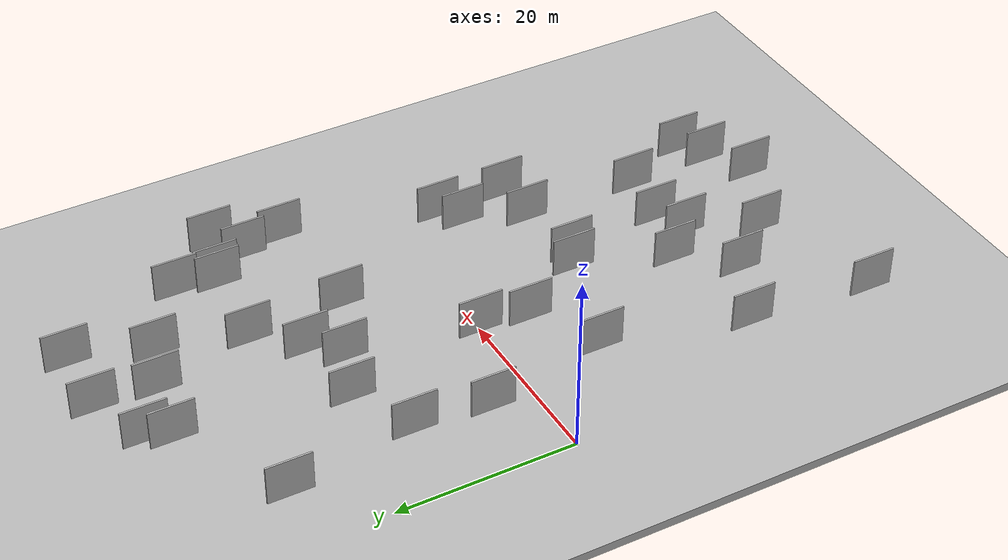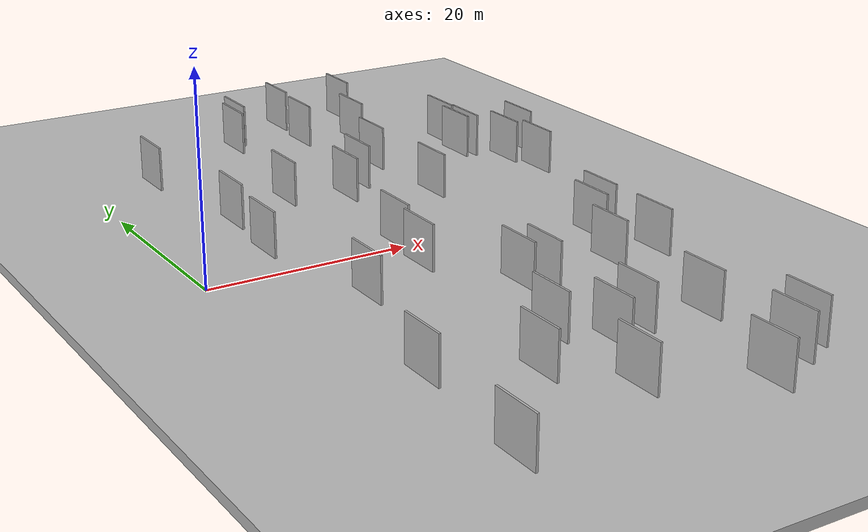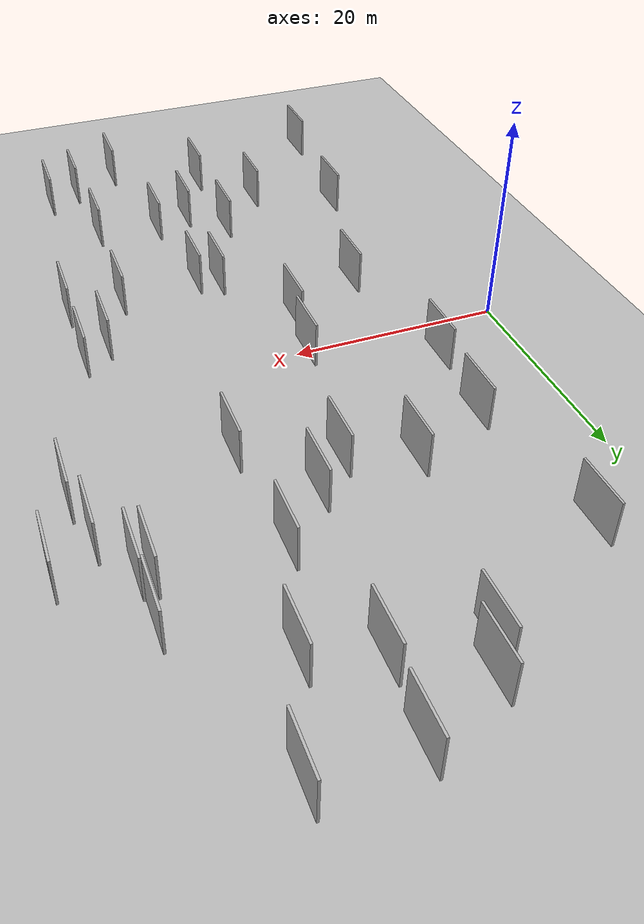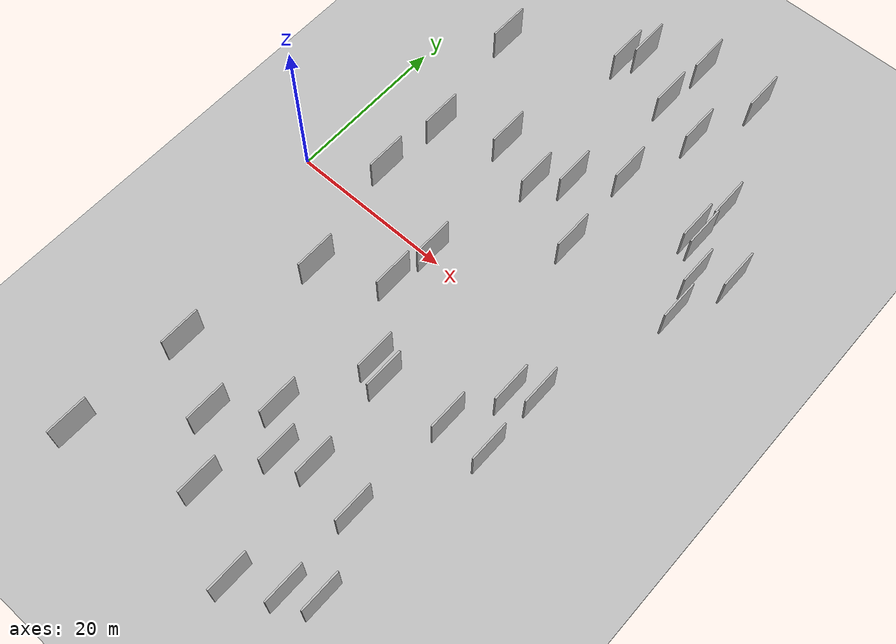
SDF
<?xml version="1.0" encoding="utf-8"?>

<sdf version="1.6">

   <world name="default">

      <gui fullscreen="0">

         <camera name="user_camera">

            <pose>-15 0 4.57585 0 0 0</pose>

            <view_controller>orbit</view_controller>

         </camera>

      </gui>

      <scene>

         <sky>

           <clouds>

             <speed>12</speed>

           </clouds>

         </sky>

         <ambient>0.4 0.4 0.4 1</ambient>

         <background>0.7 0.7 0.7 1</background>

         <shadows>1</shadows>

      </scene>

      <gravity>0 0 -9.8066</gravity>

      <magnetic_field>6e-06 2.3e-05 -4.2e-05</magnetic_field>

      <physics default="0" name="default_physics" type="ode">

         <ode>

            <solver>

               <type>quick</type>

               <iters>10</iters>

               <sor>1.0</sor>

               <use_dynamic_moi_rescaling>0</use_dynamic_moi_rescaling>

            </solver>

            <constraints>

               <cfm>0</cfm>

               <erp>0.2</erp>

               <contact_max_correcting_vel>100</contact_max_correcting_vel>

               <contact_surface_layer>0.001</contact_surface_layer>

            </constraints>

         </ode>

         <max_step_size>0.004</max_step_size>

         <real_time_factor>1</real_time_factor>

         <real_time_update_rate>250</real_time_update_rate>

      </physics>

      <light name="sun" type="directional">

         <cast_shadows>1</cast_shadows>

         <pose>0 0 10 0 0 0</pose>

         <diffuse>0.8 0.8 0.8 1</diffuse>

         <specular>0.2 0.2 0.2 1</specular>

         <attenuation>

            <range>1000</range>

            <constant>0.9</constant>

            <linear>0.01</linear>

            <quadratic>0.001</quadratic>

         </attenuation>

         <direction>-0.5 0.1 -0.9</direction>

      </light>

      <include>

         <name>ground_plane_1</name>

         <uri>model://HANNAS_ground_plane</uri>

         <pose>0 0 0  0 0 0</pose>

      </include>

      <include>

         <name>ground_plane_2</name>

         <uri>model://HANNAS_ground_plane</uri>

         <pose>100 0 0  0 0 0</pose>

      </include>

      <model name="HANNAS_wall_1">

         <static>1</static>

         <pose frame="">39.8599 25.4181 0.0 0.000000 0.000000 1.570796</pose>

         <link name="link">

            <pose frame="">0 0 2.50 0 0 0</pose>

            <collision name="collision">

               <geometry>

                  <box>

                     <size>5.00 0.2 5.00</size>

                  </box>

               </geometry>

               <max_contacts>10</max_contacts>

               <surface>

                  <contact>

                     <ode/>

                  </contact>

                  <bounce/>

                  <friction>

                     <torsional>

                        <ode/>

                     </torsional>

                     <ode/>

                  </friction>

               </surface>

            </collision>

            <visual name="visual">

               <cast_shadows>0</cast_shadows>

               <geometry>

                  <box>

                     <size>5.00 0.2 5.00</size>

                  </box>

               </geometry>

               <material>

                  <script>

                     <uri>model://HANNAS_wall/materials/scripts</uri>

                     <uri>model://HANNAS_wall/materials/textures</uri>

                     <name>vrc/HANNAS_wall</name>

                  </script>

               </material>

            </visual>

            <self_collide>0</self_collide>

            <enable_wind>0</enable_wind>

            <kinematic>0</kinematic>

         </link>

      </model>

      <model name="HANNAS_wall_2">

         <static>1</static>

         <pose frame="">38.7077 -5.1640 0.0 0.000000 0.000000 1.570796</pose>

         <link name="link">

            <pose frame="">0 0 2.50 0 0 0</pose>

            <collision name="collision">

               <geometry>

                  <box>

                     <size>5.00 0.2 5.00</size>

                  </box>

               </geometry>

               <max_contacts>10</max_contacts>

               <surface>

                  <contact>

                     <ode/>

                  </contact>

                  <bounce/>

                  <friction>

                     <torsional>

                        <ode/>

                     </torsional>

                     <ode/>

                  </friction>

               </surface>

            </collision>

            <visual name="visual">

               <cast_shadows>0</cast_shadows>

               <geometry>

                  <box>

                     <size>5.00 0.2 5.00</size>

                  </box>

               </geometry>

               <material>

                  <script>

                     <uri>model://HANNAS_wall/materials/scripts</uri>

                     <uri>model://HANNAS_wall/materials/textures</uri>

                     <name>vrc/HANNAS_wall</name>

                  </script>

               </material>

            </visual>

            <self_collide>0</self_collide>

            <enable_wind>0</enable_wind>

            <kinematic>0</kinematic>

         </link>

      </model>

      <model name="HANNAS_wall_3">

         <static>1</static>

         <pose frame="">26.2451 33.0878 0.0 0.000000 0.000000 1.570796</pose>

         <link name="link">

            <pose frame="">0 0 2.50 0 0 0</pose>

            <collision name="collision">

               <geometry>

                  <box>

                     <size>5.00 0.2 5.00</size>

                  </box>

               </geometry>

               <max_contacts>10</max_contacts>

               <surface>

                  <contact>

                     <ode/>

                  </contact>

                  <bounce/>

                  <friction>

                     <torsional>

                        <ode/>

                     </torsional>

                     <ode/>

                  </friction>

               </surface>

            </collision>

            <visual name="visual">

               <cast_shadows>0</cast_shadows>

               <geometry>

                  <box>

                     <size>5.00 0.2 5.00</size>

                  </box>

               </geometry>

               <material>

                  <script>

                     <uri>model://HANNAS_wall/materials/scripts</uri>

                     <uri>model://HANNAS_wall/materials/textures</uri>

                     <name>vrc/HANNAS_wall</name>

                  </script>

               </material>

            </visual>

            <self_collide>0</self_collide>

            <enable_wind>0</enable_wind>

            <kinematic>0</kinematic>

         </link>

      </model>

      <model name="HANNAS_wall_4">

         <static>1</static>

         <pose frame="">28.7021 -39.4503 0.0 0.000000 0.000000 1.570796</pose>

         <link name="link">

            <pose frame="">0 0 2.50 0 0 0</pose>

            <collision name="collision">

               <geometry>

                  <box>

                     <size>5.00 0.2 5.00</size>

                  </box>

               </geometry>

               <max_contacts>10</max_contacts>

               <surface>

                  <contact>

                     <ode/>

                  </contact>

                  <bounce/>

                  <friction>

                     <torsional>

                        <ode/>

                     </torsional>

                     <ode/>

                  </friction>

               </surface>

            </collision>

            <visual name="visual">

               <cast_shadows>0</cast_shadows>

               <geometry>

                  <box>

                     <size>5.00 0.2 5.00</size>

                  </box>

               </geometry>

               <material>

                  <script>

                     <uri>model://HANNAS_wall/materials/scripts</uri>

                     <uri>model://HANNAS_wall/materials/textures</uri>

                     <name>vrc/HANNAS_wall</name>

                  </script>

               </material>

            </visual>

            <self_collide>0</self_collide>

            <enable_wind>0</enable_wind>

            <kinematic>0</kinematic>

         </link>

      </model>

      <model name="HANNAS_wall_5">

         <static>1</static>

         <pose frame="">14.7106 -29.0027 0.0 0.000000 0.000000 1.570796</pose>

         <link name="link">

            <pose frame="">0 0 2.50 0 0 0</pose>

            <collision name="collision">

               <geometry>

                  <box>

                     <size>5.00 0.2 5.00</size>

                  </box>

               </geometry>

               <max_contacts>10</max_contacts>

               <surface>

                  <contact>

                     <ode/>

                  </contact>

                  <bounce/>

                  <friction>

                     <torsional>

                        <ode/>

                     </torsional>

                     <ode/>

                  </friction>

               </surface>

            </collision>

            <visual name="visual">

               <cast_shadows>0</cast_shadows>

               <geometry>

                  <box>

                     <size>5.00 0.2 5.00</size>

                  </box>

               </geometry>

               <material>

                  <script>

                     <uri>model://HANNAS_wall/materials/scripts</uri>

                     <uri>model://HANNAS_wall/materials/textures</uri>

                     <name>vrc/HANNAS_wall</name>

                  </script>

               </material>

            </visual>

            <self_collide>0</self_collide>

            <enable_wind>0</enable_wind>

            <kinematic>0</kinematic>

         </link>

      </model>

      <model name="HANNAS_wall_6">

         <static>1</static>

         <pose frame="">33.4741 -36.6794 0.0 0.000000 0.000000 1.570796</pose>

         <link name="link">

            <pose frame="">0 0 2.50 0 0 0</pose>

            <collision name="collision">

               <geometry>

                  <box>

                     <size>5.00 0.2 5.00</size>

                  </box>

               </geometry>

               <max_contacts>10</max_contacts>

               <surface>

                  <contact>

                     <ode/>

                  </contact>

                  <bounce/>

                  <friction>

                     <torsional>

                        <ode/>

                     </torsional>

                     <ode/>

                  </friction>

               </surface>

            </collision>

            <visual name="visual">

               <cast_shadows>0</cast_shadows>

               <geometry>

                  <box>

                     <size>5.00 0.2 5.00</size>

                  </box>

               </geometry>

               <material>

                  <script>

                     <uri>model://HANNAS_wall/materials/scripts</uri>

                     <uri>model://HANNAS_wall/materials/textures</uri>

                     <name>vrc/HANNAS_wall</name>

                  </script>

               </material>

            </visual>

            <self_collide>0</self_collide>

            <enable_wind>0</enable_wind>

            <kinematic>0</kinematic>

         </link>

      </model>

      <model name="HANNAS_wall_7">

         <static>1</static>

         <pose frame="">21.7800 14.4285 0.0 0.000000 0.000000 1.570796</pose>

         <link name="link">

            <pose frame="">0 0 2.50 0 0 0</pose>

            <collision name="collision">

               <geometry>

                  <box>

                     <size>5.00 0.2 5.00</size>

                  </box>

               </geometry>

               <max_contacts>10</max_contacts>

               <surface>

                  <contact>

                     <ode/>

                  </contact>

                  <bounce/>

                  <friction>

                     <torsional>

                        <ode/>

                     </torsional>

                     <ode/>

                  </friction>

               </surface>

            </collision>

            <visual name="visual">

               <cast_shadows>0</cast_shadows>

               <geometry>

                  <box>

                     <size>5.00 0.2 5.00</size>

                  </box>

               </geometry>

               <material>

                  <script>

                     <uri>model://HANNAS_wall/materials/scripts</uri>

                     <uri>model://HANNAS_wall/materials/textures</uri>

                     <name>vrc/HANNAS_wall</name>

                  </script>

               </material>

            </visual>

            <self_collide>0</self_collide>

            <enable_wind>0</enable_wind>

            <kinematic>0</kinematic>

         </link>

      </model>

      <model name="HANNAS_wall_8">

         <static>1</static>

         <pose frame="">26.7249 -25.7648 0.0 0.000000 0.000000 1.570796</pose>

         <link name="link">

            <pose frame="">0 0 2.50 0 0 0</pose>

            <collision name="collision">

               <geometry>

                  <box>

                     <size>5.00 0.2 5.00</size>

                  </box>

               </geometry>

               <max_contacts>10</max_contacts>

               <surface>

                  <contact>

                     <ode/>

                  </contact>

                  <bounce/>

                  <friction>

                     <torsional>

                        <ode/>

                     </torsional>

                     <ode/>

                  </friction>

               </surface>

            </collision>

            <visual name="visual">

               <cast_shadows>0</cast_shadows>

               <geometry>

                  <box>

                     <size>5.00 0.2 5.00</size>

                  </box>

               </geometry>

               <material>

                  <script>

                     <uri>model://HANNAS_wall/materials/scripts</uri>

                     <uri>model://HANNAS_wall/materials/textures</uri>

                     <name>vrc/HANNAS_wall</name>

                  </script>

               </material>

            </visual>

            <self_collide>0</self_collide>

            <enable_wind>0</enable_wind>

            <kinematic>0</kinematic>

         </link>

      </model>

      <model name="HANNAS_wall_9">

         <static>1</static>

         <pose frame="">6.6784 -25.0582 0.0 0.000000 0.000000 1.570796</pose>

         <link name="link">

            <pose frame="">0 0 2.50 0 0 0</pose>

            <collision name="collision">

               <geometry>

                  <box>

                     <size>5.00 0.2 5.00</size>

                  </box>

               </geometry>

               <max_contacts>10</max_contacts>

               <surface>

                  <contact>

                     <ode/>

                  </contact>

                  <bounce/>

                  <friction>

                     <torsional>

                        <ode/>

                     </torsional>

                     <ode/>

                  </friction>

               </surface>

            </collision>

            <visual name="visual">

               <cast_shadows>0</cast_shadows>

               <geometry>

                  <box>

                     <size>5.00 0.2 5.00</size>

                  </box>

               </geometry>

               <material>

                  <script>

                     <uri>model://HANNAS_wall/materials/scripts</uri>

                     <uri>model://HANNAS_wall/materials/textures</uri>

                     <name>vrc/HANNAS_wall</name>

                  </script>

               </material>

            </visual>

            <self_collide>0</self_collide>

            <enable_wind>0</enable_wind>

            <kinematic>0</kinematic>

         </link>

      </model>

      <model name="HANNAS_wall_10">

         <static>1</static>

         <pose frame="">18.8569 34.4872 0.0 0.000000 0.000000 1.570796</pose>

         <link name="link">

            <pose frame="">0 0 2.50 0 0 0</pose>

            <collision name="collision">

               <geometry>

                  <box>

                     <size>5.00 0.2 5.00</size>

                  </box>

               </geometry>

               <max_contacts>10</max_contacts>

               <surface>

                  <contact>

                     <ode/>

                  </contact>

                  <bounce/>

                  <friction>

                     <torsional>

                        <ode/>

                     </torsional>

                     <ode/>

                  </friction>

               </surface>

            </collision>

            <visual name="visual">

               <cast_shadows>0</cast_shadows>

               <geometry>

                  <box>

                     <size>5.00 0.2 5.00</size>

                  </box>

               </geometry>

               <material>

                  <script>

                     <uri>model://HANNAS_wall/materials/scripts</uri>

                     <uri>model://HANNAS_wall/materials/textures</uri>

                     <name>vrc/HANNAS_wall</name>

                  </script>

               </material>

            </visual>

            <self_collide>0</self_collide>

            <enable_wind>0</enable_wind>

            <kinematic>0</kinematic>

         </link>

      </model>

      <model name="HANNAS_wall_11">

         <static>1</static>

         <pose frame="">32.9555 -26.6926 0.0 0.000000 0.000000 1.570796</pose>

         <link name="link">

            <pose frame="">0 0 2.50 0 0 0</pose>

            <collision name="collision">

               <geometry>

                  <box>

                     <size>5.00 0.2 5.00</size>

                  </box>

               </geometry>

               <max_contacts>10</max_contacts>

               <surface>

                  <contact>

                     <ode/>

                  </contact>

                  <bounce/>

                  <friction>

                     <torsional>

                        <ode/>

                     </torsional>

                     <ode/>

                  </friction>

               </surface>

            </collision>

            <visual name="visual">

               <cast_shadows>0</cast_shadows>

               <geometry>

                  <box>

                     <size>5.00 0.2 5.00</size>

                  </box>

               </geometry>

               <material>

                  <script>

                     <uri>model://HANNAS_wall/materials/scripts</uri>

                     <uri>model://HANNAS_wall/materials/textures</uri>

                     <name>vrc/HANNAS_wall</name>

                  </script>

               </material>

            </visual>

            <self_collide>0</self_collide>

            <enable_wind>0</enable_wind>

            <kinematic>0</kinematic>

         </link>

      </model>

      <model name="HANNAS_wall_12">

         <static>1</static>

         <pose frame="">36.2605 -6.9438 0.0 0.000000 0.000000 1.570796</pose>

         <link name="link">

            <pose frame="">0 0 2.50 0 0 0</pose>

            <collision name="collision">

               <geometry>

                  <box>

                     <size>5.00 0.2 5.00</size>

                  </box>

               </geometry>

               <max_contacts>10</max_contacts>

               <surface>

                  <contact>

                     <ode/>

                  </contact>

                  <bounce/>

                  <friction>

                     <torsional>

                        <ode/>

                     </torsional>

                     <ode/>

                  </friction>

               </surface>

            </collision>

            <visual name="visual">

               <cast_shadows>0</cast_shadows>

               <geometry>

                  <box>

                     <size>5.00 0.2 5.00</size>

                  </box>

               </geometry>

               <material>

                  <script>

                     <uri>model://HANNAS_wall/materials/scripts</uri>

                     <uri>model://HANNAS_wall/materials/textures</uri>

                     <name>vrc/HANNAS_wall</name>

                  </script>

               </material>

            </visual>

            <self_collide>0</self_collide>

            <enable_wind>0</enable_wind>

            <kinematic>0</kinematic>

         </link>

      </model>

      <model name="HANNAS_wall_13">

         <static>1</static>

         <pose frame="">33.4704 -13.4290 0.0 0.000000 0.000000 1.570796</pose>

         <link name="link">

            <pose frame="">0 0 2.50 0 0 0</pose>

            <collision name="collision">

               <geometry>

                  <box>

                     <size>5.00 0.2 5.00</size>

                  </box>

               </geometry>

               <max_contacts>10</max_contacts>

               <surface>

                  <contact>

                     <ode/>

                  </contact>

                  <bounce/>

                  <friction>

                     <torsional>

                        <ode/>

                     </torsional>

                     <ode/>

                  </friction>

               </surface>

            </collision>

            <visual name="visual">

               <cast_shadows>0</cast_shadows>

               <geometry>

                  <box>

                     <size>5.00 0.2 5.00</size>

                  </box>

               </geometry>

               <material>

                  <script>

                     <uri>model://HANNAS_wall/materials/scripts</uri>

                     <uri>model://HANNAS_wall/materials/textures</uri>

                     <name>vrc/HANNAS_wall</name>

                  </script>

               </material>

            </visual>

            <self_collide>0</self_collide>

            <enable_wind>0</enable_wind>

            <kinematic>0</kinematic>

         </link>

      </model>

      <model name="HANNAS_wall_14">

         <static>1</static>

         <pose frame="">26.6955 39.7175 0.0 0.000000 0.000000 1.570796</pose>

         <link name="link">

            <pose frame="">0 0 2.50 0 0 0</pose>

            <collision name="collision">

               <geometry>

                  <box>

                     <size>5.00 0.2 5.00</size>

                  </box>

               </geometry>

               <max_contacts>10</max_contacts>

               <surface>

                  <contact>

                     <ode/>

                  </contact>

                  <bounce/>

                  <friction>

                     <torsional>

                        <ode/>

                     </torsional>

                     <ode/>

                  </friction>

               </surface>

            </collision>

            <visual name="visual">

               <cast_shadows>0</cast_shadows>

               <geometry>

                  <box>

                     <size>5.00 0.2 5.00</size>

                  </box>

               </geometry>

               <material>

                  <script>

                     <uri>model://HANNAS_wall/materials/scripts</uri>

                     <uri>model://HANNAS_wall/materials/textures</uri>

                     <name>vrc/HANNAS_wall</name>

                  </script>

               </material>

            </visual>

            <self_collide>0</self_collide>

            <enable_wind>0</enable_wind>

            <kinematic>0</kinematic>

         </link>

      </model>

      <model name="HANNAS_wall_15">

         <static>1</static>

         <pose frame="">31.6888 31.1160 0.0 0.000000 0.000000 1.570796</pose>

         <link name="link">

            <pose frame="">0 0 2.50 0 0 0</pose>

            <collision name="collision">

               <geometry>

                  <box>

                     <size>5.00 0.2 5.00</size>

                  </box>

               </geometry>

               <max_contacts>10</max_contacts>

               <surface>

                  <contact>

                     <ode/>

                  </contact>

                  <bounce/>

                  <friction>

                     <torsional>

                        <ode/>

                     </torsional>

                     <ode/>

                  </friction>

               </surface>

            </collision>

            <visual name="visual">

               <cast_shadows>0</cast_shadows>

               <geometry>

                  <box>

                     <size>5.00 0.2 5.00</size>

                  </box>

               </geometry>

               <material>

                  <script>

                     <uri>model://HANNAS_wall/materials/scripts</uri>

                     <uri>model://HANNAS_wall/materials/textures</uri>

                     <name>vrc/HANNAS_wall</name>

                  </script>

               </material>

            </visual>

            <self_collide>0</self_collide>

            <enable_wind>0</enable_wind>

            <kinematic>0</kinematic>

         </link>

      </model>

      <model name="HANNAS_wall_16">

         <static>1</static>

         <pose frame="">18.4051 -5.2788 0.0 0.000000 0.000000 1.570796</pose>

         <link name="link">

            <pose frame="">0 0 2.50 0 0 0</pose>

            <collision name="collision">

               <geometry>

                  <box>

                     <size>5.00 0.2 5.00</size>

                  </box>

               </geometry>

               <max_contacts>10</max_contacts>

               <surface>

                  <contact>

                     <ode/>

                  </contact>

                  <bounce/>

                  <friction>

                     <torsional>

                        <ode/>

                     </torsional>

                     <ode/>

                  </friction>

               </surface>

            </collision>

            <visual name="visual">

               <cast_shadows>0</cast_shadows>

               <geometry>

                  <box>

                     <size>5.00 0.2 5.00</size>

                  </box>

               </geometry>

               <material>

                  <script>

                     <uri>model://HANNAS_wall/materials/scripts</uri>

                     <uri>model://HANNAS_wall/materials/textures</uri>

                     <name>vrc/HANNAS_wall</name>

                  </script>

               </material>

            </visual>

            <self_collide>0</self_collide>

            <enable_wind>0</enable_wind>

            <kinematic>0</kinematic>

         </link>

      </model>

      <model name="HANNAS_wall_17">

         <static>1</static>

         <pose frame="">34.5211 39.5623 0.0 0.000000 0.000000 1.570796</pose>

         <link name="link">

            <pose frame="">0 0 2.50 0 0 0</pose>

            <collision name="collision">

               <geometry>

                  <box>

                     <size>5.00 0.2 5.00</size>

                  </box>

               </geometry>

               <max_contacts>10</max_contacts>

               <surface>

                  <contact>

                     <ode/>

                  </contact>

                  <bounce/>

                  <friction>

                     <torsional>

                        <ode/>

                     </torsional>

                     <ode/>

                  </friction>

               </surface>

            </collision>

            <visual name="visual">

               <cast_shadows>0</cast_shadows>

               <geometry>

                  <box>

                     <size>5.00 0.2 5.00</size>

                  </box>

               </geometry>

               <material>

                  <script>

                     <uri>model://HANNAS_wall/materials/scripts</uri>

                     <uri>model://HANNAS_wall/materials/textures</uri>

                     <name>vrc/HANNAS_wall</name>

                  </script>

               </material>

            </visual>

            <self_collide>0</self_collide>

            <enable_wind>0</enable_wind>

            <kinematic>0</kinematic>

         </link>

      </model>

      <model name="HANNAS_wall_18">

         <static>1</static>

         <pose frame="">23.4957 -13.4753 0.0 0.000000 0.000000 1.570796</pose>

         <link name="link">

            <pose frame="">0 0 2.50 0 0 0</pose>

            <collision name="collision">

               <geometry>

                  <box>

                     <size>5.00 0.2 5.00</size>

                  </box>

               </geometry>

               <max_contacts>10</max_contacts>

               <surface>

                  <contact>

                     <ode/>

                  </contact>

                  <bounce/>

                  <friction>

                     <torsional>

                        <ode/>

                     </torsional>

                     <ode/>

                  </friction>

               </surface>

            </collision>

            <visual name="visual">

               <cast_shadows>0</cast_shadows>

               <geometry>

                  <box>

                     <size>5.00 0.2 5.00</size>

                  </box>

               </geometry>

               <material>

                  <script>

                     <uri>model://HANNAS_wall/materials/scripts</uri>

                     <uri>model://HANNAS_wall/materials/textures</uri>

                     <name>vrc/HANNAS_wall</name>

                  </script>

               </material>

            </visual>

            <self_collide>0</self_collide>

            <enable_wind>0</enable_wind>

            <kinematic>0</kinematic>

         </link>

      </model>

      <model name="HANNAS_wall_19">

         <static>1</static>

         <pose frame="">29.0298 21.8526 0.0 0.000000 0.000000 1.570796</pose>

         <link name="link">

            <pose frame="">0 0 2.50 0 0 0</pose>

            <collision name="collision">

               <geometry>

                  <box>

                     <size>5.00 0.2 5.00</size>

                  </box>

               </geometry>

               <max_contacts>10</max_contacts>

               <surface>

                  <contact>

                     <ode/>

                  </contact>

                  <bounce/>

                  <friction>

                     <torsional>

                        <ode/>

                     </torsional>

                     <ode/>

                  </friction>

               </surface>

            </collision>

            <visual name="visual">

               <cast_shadows>0</cast_shadows>

               <geometry>

                  <box>

                     <size>5.00 0.2 5.00</size>

                  </box>

               </geometry>

               <material>

                  <script>

                     <uri>model://HANNAS_wall/materials/scripts</uri>

                     <uri>model://HANNAS_wall/materials/textures</uri>

                     <name>vrc/HANNAS_wall</name>

                  </script>

               </material>

            </visual>

            <self_collide>0</self_collide>

            <enable_wind>0</enable_wind>

            <kinematic>0</kinematic>

         </link>

      </model>

      <model name="HANNAS_wall_20">

         <static>1</static>

         <pose frame="">19.5828 -23.6909 0.0 0.000000 0.000000 1.570796</pose>

         <link name="link">

            <pose frame="">0 0 2.50 0 0 0</pose>

            <collision name="collision">

               <geometry>

                  <box>

                     <size>5.00 0.2 5.00</size>

                  </box>

               </geometry>

               <max_contacts>10</max_contacts>

               <surface>

                  <contact>

                     <ode/>

                  </contact>

                  <bounce/>

                  <friction>

                     <torsional>

                        <ode/>

                     </torsional>

                     <ode/>

                  </friction>

               </surface>

            </collision>

            <visual name="visual">

               <cast_shadows>0</cast_shadows>

               <geometry>

                  <box>

                     <size>5.00 0.2 5.00</size>

                  </box>

               </geometry>

               <material>

                  <script>

                     <uri>model://HANNAS_wall/materials/scripts</uri>

                     <uri>model://HANNAS_wall/materials/textures</uri>

                     <name>vrc/HANNAS_wall</name>

                  </script>

               </material>

            </visual>

            <self_collide>0</self_collide>

            <enable_wind>0</enable_wind>

            <kinematic>0</kinematic>

         </link>

      </model>

      <model name="HANNAS_wall_21">

         <static>1</static>

         <pose frame="">19.6270 -34.7975 0.0 0.000000 0.000000 1.570796</pose>

         <link name="link">

            <pose frame="">0 0 2.50 0 0 0</pose>

            <collision name="collision">

               <geometry>

                  <box>

                     <size>5.00 0.2 5.00</size>

                  </box>

               </geometry>

               <max_contacts>10</max_contacts>

               <surface>

                  <contact>

                     <ode/>

                  </contact>

                  <bounce/>

                  <friction>

                     <torsional>

                        <ode/>

                     </torsional>

                     <ode/>

                  </friction>

               </surface>

            </collision>

            <visual name="visual">

               <cast_shadows>0</cast_shadows>

               <geometry>

                  <box>

                     <size>5.00 0.2 5.00</size>

                  </box>

               </geometry>

               <material>

                  <script>

                     <uri>model://HANNAS_wall/materials/scripts</uri>

                     <uri>model://HANNAS_wall/materials/textures</uri>

                     <name>vrc/HANNAS_wall</name>

                  </script>

               </material>

            </visual>

            <self_collide>0</self_collide>

            <enable_wind>0</enable_wind>

            <kinematic>0</kinematic>

         </link>

      </model>

      <model name="HANNAS_wall_22">

         <static>1</static>

         <pose frame="">24.7822 17.3534 0.0 0.000000 0.000000 1.570796</pose>

         <link name="link">

            <pose frame="">0 0 2.50 0 0 0</pose>

            <collision name="collision">

               <geometry>

                  <box>

                     <size>5.00 0.2 5.00</size>

                  </box>

               </geometry>

               <max_contacts>10</max_contacts>

               <surface>

                  <contact>

                     <ode/>

                  </contact>

                  <bounce/>

                  <friction>

                     <torsional>

                        <ode/>

                     </torsional>

                     <ode/>

                  </friction>

               </surface>

            </collision>

            <visual name="visual">

               <cast_shadows>0</cast_shadows>

               <geometry>

                  <box>

                     <size>5.00 0.2 5.00</size>

                  </box>

               </geometry>

               <material>

                  <script>

                     <uri>model://HANNAS_wall/materials/scripts</uri>

                     <uri>model://HANNAS_wall/materials/textures</uri>

                     <name>vrc/HANNAS_wall</name>

                  </script>

               </material>

            </visual>

            <self_collide>0</self_collide>

            <enable_wind>0</enable_wind>

            <kinematic>0</kinematic>

         </link>

      </model>

      <model name="HANNAS_wall_23">

         <static>1</static>

         <pose frame="">15.9523 16.4807 0.0 0.000000 0.000000 1.570796</pose>

         <link name="link">

            <pose frame="">0 0 2.50 0 0 0</pose>

            <collision name="collision">

               <geometry>

                  <box>

                     <size>5.00 0.2 5.00</size>

                  </box>

               </geometry>

               <max_contacts>10</max_contacts>

               <surface>

                  <contact>

                     <ode/>

                  </contact>

                  <bounce/>

                  <friction>

                     <torsional>

                        <ode/>

                     </torsional>

                     <ode/>

                  </friction>

               </surface>

            </collision>

            <visual name="visual">

               <cast_shadows>0</cast_shadows>

               <geometry>

                  <box>

                     <size>5.00 0.2 5.00</size>

                  </box>

               </geometry>

               <material>

                  <script>

                     <uri>model://HANNAS_wall/materials/scripts</uri>

                     <uri>model://HANNAS_wall/materials/textures</uri>

                     <name>vrc/HANNAS_wall</name>

                  </script>

               </material>

            </visual>

            <self_collide>0</self_collide>

            <enable_wind>0</enable_wind>

            <kinematic>0</kinematic>

         </link>

      </model>

      <model name="HANNAS_wall_24">

         <static>1</static>

         <pose frame="">42.3539 16.4638 0.0 0.000000 0.000000 1.570796</pose>

         <link name="link">

            <pose frame="">0 0 2.50 0 0 0</pose>

            <collision name="collision">

               <geometry>

                  <box>

                     <size>5.00 0.2 5.00</size>

                  </box>

               </geometry>

               <max_contacts>10</max_contacts>

               <surface>

                  <contact>

                     <ode/>

                  </contact>

                  <bounce/>

                  <friction>

                     <torsional>

                        <ode/>

                     </torsional>

                     <ode/>

                  </friction>

               </surface>

            </collision>

            <visual name="visual">

               <cast_shadows>0</cast_shadows>

               <geometry>

                  <box>

                     <size>5.00 0.2 5.00</size>

                  </box>

               </geometry>

               <material>

                  <script>

                     <uri>model://HANNAS_wall/materials/scripts</uri>

                     <uri>model://HANNAS_wall/materials/textures</uri>

                     <name>vrc/HANNAS_wall</name>

                  </script>

               </material>

            </visual>

            <self_collide>0</self_collide>

            <enable_wind>0</enable_wind>

            <kinematic>0</kinematic>

         </link>

      </model>

      <model name="HANNAS_wall_25">

         <static>1</static>

         <pose frame="">8.7243 13.2373 0.0 0.000000 0.000000 1.570796</pose>

         <link name="link">

            <pose frame="">0 0 2.50 0 0 0</pose>

            <collision name="collision">

               <geometry>

                  <box>

                     <size>5.00 0.2 5.00</size>

                  </box>

               </geometry>

               <max_contacts>10</max_contacts>

               <surface>

                  <contact>

                     <ode/>

                  </contact>

                  <bounce/>

                  <friction>

                     <torsional>

                        <ode/>

                     </torsional>

                     <ode/>

                  </friction>

               </surface>

            </collision>

            <visual name="visual">

               <cast_shadows>0</cast_shadows>

               <geometry>

                  <box>

                     <size>5.00 0.2 5.00</size>

                  </box>

               </geometry>

               <material>

                  <script>

                     <uri>model://HANNAS_wall/materials/scripts</uri>

                     <uri>model://HANNAS_wall/materials/textures</uri>

                     <name>vrc/HANNAS_wall</name>

                  </script>

               </material>

            </visual>

            <self_collide>0</self_collide>

            <enable_wind>0</enable_wind>

            <kinematic>0</kinematic>

         </link>

      </model>

      <model name="HANNAS_wall_26">

         <static>1</static>

         <pose frame="">19.1493 0.1953 0.0 0.000000 0.000000 1.570796</pose>

         <link name="link">

            <pose frame="">0 0 2.50 0 0 0</pose>

            <collision name="collision">

               <geometry>

                  <box>

                     <size>5.00 0.2 5.00</size>

                  </box>

               </geometry>

               <max_contacts>10</max_contacts>

               <surface>

                  <contact>

                     <ode/>

                  </contact>

                  <bounce/>

                  <friction>

                     <torsional>

                        <ode/>

                     </torsional>

                     <ode/>

                  </friction>

               </surface>

            </collision>

            <visual name="visual">

               <cast_shadows>0</cast_shadows>

               <geometry>

                  <box>

                     <size>5.00 0.2 5.00</size>

                  </box>

               </geometry>

               <material>

                  <script>

                     <uri>model://HANNAS_wall/materials/scripts</uri>

                     <uri>model://HANNAS_wall/materials/textures</uri>

                     <name>vrc/HANNAS_wall</name>

                  </script>

               </material>

            </visual>

            <self_collide>0</self_collide>

            <enable_wind>0</enable_wind>

            <kinematic>0</kinematic>

         </link>

      </model>

      <model name="HANNAS_wall_27">

         <static>1</static>

         <pose frame="">20.1574 36.8348 0.0 0.000000 0.000000 1.570796</pose>

         <link name="link">

            <pose frame="">0 0 2.50 0 0 0</pose>

            <collision name="collision">

               <geometry>

                  <box>

                     <size>5.00 0.2 5.00</size>

                  </box>

               </geometry>

               <max_contacts>10</max_contacts>

               <surface>

                  <contact>

                     <ode/>

                  </contact>

                  <bounce/>

                  <friction>

                     <torsional>

                        <ode/>

                     </torsional>

                     <ode/>

                  </friction>

               </surface>

            </collision>

            <visual name="visual">

               <cast_shadows>0</cast_shadows>

               <geometry>

                  <box>

                     <size>5.00 0.2 5.00</size>

                  </box>

               </geometry>

               <material>

                  <script>

                     <uri>model://HANNAS_wall/materials/scripts</uri>

                     <uri>model://HANNAS_wall/materials/textures</uri>

                     <name>vrc/HANNAS_wall</name>

                  </script>

               </material>

            </visual>

            <self_collide>0</self_collide>

            <enable_wind>0</enable_wind>

            <kinematic>0</kinematic>

         </link>

      </model>

      <model name="HANNAS_wall_28">

         <static>1</static>

         <pose frame="">7.9740 4.8975 0.0 0.000000 0.000000 1.570796</pose>

         <link name="link">

            <pose frame="">0 0 2.50 0 0 0</pose>

            <collision name="collision">

               <geometry>

                  <box>

                     <size>5.00 0.2 5.00</size>

                  </box>

               </geometry>

               <max_contacts>10</max_contacts>

               <surface>

                  <contact>

                     <ode/>

                  </contact>

                  <bounce/>

                  <friction>

                     <torsional>

                        <ode/>

                     </torsional>

                     <ode/>

                  </friction>

               </surface>

            </collision>

            <visual name="visual">

               <cast_shadows>0</cast_shadows>

               <geometry>

                  <box>

                     <size>5.00 0.2 5.00</size>

                  </box>

               </geometry>

               <material>

                  <script>

                     <uri>model://HANNAS_wall/materials/scripts</uri>

                     <uri>model://HANNAS_wall/materials/textures</uri>

                     <name>vrc/HANNAS_wall</name>

                  </script>

               </material>

            </visual>

            <self_collide>0</self_collide>

            <enable_wind>0</enable_wind>

            <kinematic>0</kinematic>

         </link>

      </model>

      <model name="HANNAS_wall_29">

         <static>1</static>

         <pose frame="">23.0907 -27.2850 0.0 0.000000 0.000000 1.570796</pose>

         <link name="link">

            <pose frame="">0 0 2.50 0 0 0</pose>

            <collision name="collision">

               <geometry>

                  <box>

                     <size>5.00 0.2 5.00</size>

                  </box>

               </geometry>

               <max_contacts>10</max_contacts>

               <surface>

                  <contact>

                     <ode/>

                  </contact>

                  <bounce/>

                  <friction>

                     <torsional>

                        <ode/>

                     </torsional>

                     <ode/>

                  </friction>

               </surface>

            </collision>

            <visual name="visual">

               <cast_shadows>0</cast_shadows>

               <geometry>

                  <box>

                     <size>5.00 0.2 5.00</size>

                  </box>

               </geometry>

               <material>

                  <script>

                     <uri>model://HANNAS_wall/materials/scripts</uri>

                     <uri>model://HANNAS_wall/materials/textures</uri>

                     <name>vrc/HANNAS_wall</name>

                  </script>

               </material>

            </visual>

            <self_collide>0</self_collide>

            <enable_wind>0</enable_wind>

            <kinematic>0</kinematic>

         </link>

      </model>

      <model name="HANNAS_wall_30">

         <static>1</static>

         <pose frame="">25.5835 -14.4208 0.0 0.000000 0.000000 1.570796</pose>

         <link name="link">

            <pose frame="">0 0 2.50 0 0 0</pose>

            <collision name="collision">

               <geometry>

                  <box>

                     <size>5.00 0.2 5.00</size>

                  </box>

               </geometry>

               <max_contacts>10</max_contacts>

               <surface>

                  <contact>

                     <ode/>

                  </contact>

                  <bounce/>

                  <friction>

                     <torsional>

                        <ode/>

                     </torsional>

                     <ode/>

                  </friction>

               </surface>

            </collision>

            <visual name="visual">

               <cast_shadows>0</cast_shadows>

               <geometry>

                  <box>

                     <size>5.00 0.2 5.00</size>

                  </box>

               </geometry>

               <material>

                  <script>

                     <uri>model://HANNAS_wall/materials/scripts</uri>

                     <uri>model://HANNAS_wall/materials/textures</uri>

                     <name>vrc/HANNAS_wall</name>

                  </script>

               </material>

            </visual>

            <self_collide>0</self_collide>

            <enable_wind>0</enable_wind>

            <kinematic>0</kinematic>

         </link>

      </model>

      <model name="HANNAS_wall_31">

         <static>1</static>

         <pose frame="">36.5977 -34.9653 0.0 0.000000 0.000000 1.570796</pose>

         <link name="link">

            <pose frame="">0 0 2.50 0 0 0</pose>

            <collision name="collision">

               <geometry>

                  <box>

                     <size>5.00 0.2 5.00</size>

                  </box>

               </geometry>

               <max_contacts>10</max_contacts>

               <surface>

                  <contact>

                     <ode/>

                  </contact>

                  <bounce/>

                  <friction>

                     <torsional>

                        <ode/>

                     </torsional>

                     <ode/>

                  </friction>

               </surface>

            </collision>

            <visual name="visual">

               <cast_shadows>0</cast_shadows>

               <geometry>

                  <box>

                     <size>5.00 0.2 5.00</size>

                  </box>

               </geometry>

               <material>

                  <script>

                     <uri>model://HANNAS_wall/materials/scripts</uri>

                     <uri>model://HANNAS_wall/materials/textures</uri>

                     <name>vrc/HANNAS_wall</name>

                  </script>

               </material>

            </visual>

            <self_collide>0</self_collide>

            <enable_wind>0</enable_wind>

            <kinematic>0</kinematic>

         </link>

      </model>

      <model name="HANNAS_wall_32">

         <static>1</static>

         <pose frame="">29.7608 10.9643 0.0 0.000000 0.000000 1.570796</pose>

         <link name="link">

            <pose frame="">0 0 2.50 0 0 0</pose>

            <collision name="collision">

               <geometry>

                  <box>

                     <size>5.00 0.2 5.00</size>

                  </box>

               </geometry>

               <max_contacts>10</max_contacts>

               <surface>

                  <contact>

                     <ode/>

                  </contact>

                  <bounce/>

                  <friction>

                     <torsional>

                        <ode/>

                     </torsional>

                     <ode/>

                  </friction>

               </surface>

            </collision>

            <visual name="visual">

               <cast_shadows>0</cast_shadows>

               <geometry>

                  <box>

                     <size>5.00 0.2 5.00</size>

                  </box>

               </geometry>

               <material>

                  <script>

                     <uri>model://HANNAS_wall/materials/scripts</uri>

                     <uri>model://HANNAS_wall/materials/textures</uri>

                     <name>vrc/HANNAS_wall</name>

                  </script>

               </material>

            </visual>

            <self_collide>0</self_collide>

            <enable_wind>0</enable_wind>

            <kinematic>0</kinematic>

         </link>

      </model>

      <model name="HANNAS_wall_33">

         <static>1</static>

         <pose frame="">6.4875 27.7052 0.0 0.000000 0.000000 1.570796</pose>

         <link name="link">

            <pose frame="">0 0 2.50 0 0 0</pose>

            <collision name="collision">

               <geometry>

                  <box>

                     <size>5.00 0.2 5.00</size>

                  </box>

               </geometry>

               <max_contacts>10</max_contacts>

               <surface>

                  <contact>

                     <ode/>

                  </contact>

                  <bounce/>

                  <friction>

                     <torsional>

                        <ode/>

                     </torsional>

                     <ode/>

                  </friction>

               </surface>

            </collision>

            <visual name="visual">

               <cast_shadows>0</cast_shadows>

               <geometry>

                  <box>

                     <size>5.00 0.2 5.00</size>

                  </box>

               </geometry>

               <material>

                  <script>

                     <uri>model://HANNAS_wall/materials/scripts</uri>

                     <uri>model://HANNAS_wall/materials/textures</uri>

                     <name>vrc/HANNAS_wall</name>

                  </script>

               </material>

            </visual>

            <self_collide>0</self_collide>

            <enable_wind>0</enable_wind>

            <kinematic>0</kinematic>

         </link>

      </model>

      <model name="HANNAS_wall_34">

         <static>1</static>

         <pose frame="">40.0632 20.6979 0.0 0.000000 0.000000 1.570796</pose>

         <link name="link">

            <pose frame="">0 0 2.50 0 0 0</pose>

            <collision name="collision">

               <geometry>

                  <box>

                     <size>5.00 0.2 5.00</size>

                  </box>

               </geometry>

               <max_contacts>10</max_contacts>

               <surface>

                  <contact>

                     <ode/>

                  </contact>

                  <bounce/>

                  <friction>

                     <torsional>

                        <ode/>

                     </torsional>

                     <ode/>

                  </friction>

               </surface>

            </collision>

            <visual name="visual">

               <cast_shadows>0</cast_shadows>

               <geometry>

                  <box>

                     <size>5.00 0.2 5.00</size>

                  </box>

               </geometry>

               <material>

                  <script>

                     <uri>model://HANNAS_wall/materials/scripts</uri>

                     <uri>model://HANNAS_wall/materials/textures</uri>

                     <name>vrc/HANNAS_wall</name>

                  </script>

               </material>

            </visual>

            <self_collide>0</self_collide>

            <enable_wind>0</enable_wind>

            <kinematic>0</kinematic>

         </link>

      </model>

      <model name="HANNAS_wall_35">

         <static>1</static>

         <pose frame="">43.3226 11.8094 0.0 0.000000 0.000000 1.570796</pose>

         <link name="link">

            <pose frame="">0 0 2.50 0 0 0</pose>

            <collision name="collision">

               <geometry>

                  <box>

                     <size>5.00 0.2 5.00</size>

                  </box>

               </geometry>

               <max_contacts>10</max_contacts>

               <surface>

                  <contact>

                     <ode/>

                  </contact>

                  <bounce/>

                  <friction>

                     <torsional>

                        <ode/>

                     </torsional>

                     <ode/>

                  </friction>

               </surface>

            </collision>

            <visual name="visual">

               <cast_shadows>0</cast_shadows>

               <geometry>

                  <box>

                     <size>5.00 0.2 5.00</size>

                  </box>

               </geometry>

               <material>

                  <script>

                     <uri>model://HANNAS_wall/materials/scripts</uri>

                     <uri>model://HANNAS_wall/materials/textures</uri>

                     <name>vrc/HANNAS_wall</name>

                  </script>

               </material>

            </visual>

            <self_collide>0</self_collide>

            <enable_wind>0</enable_wind>

            <kinematic>0</kinematic>

         </link>

      </model>

      <model name="HANNAS_wall_36">

         <static>1</static>

         <pose frame="">45.8292 18.8973 0.0 0.000000 0.000000 1.570796</pose>

         <link name="link">

            <pose frame="">0 0 2.50 0 0 0</pose>

            <collision name="collision">

               <geometry>

                  <box>

                     <size>5.00 0.2 5.00</size>

                  </box>

               </geometry>

               <max_contacts>10</max_contacts>

               <surface>

                  <contact>

                     <ode/>

                  </contact>

                  <bounce/>

                  <friction>

                     <torsional>

                        <ode/>

                     </torsional>

                     <ode/>

                  </friction>

               </surface>

            </collision>

            <visual name="visual">

               <cast_shadows>0</cast_shadows>

               <geometry>

                  <box>

                     <size>5.00 0.2 5.00</size>

                  </box>

               </geometry>

               <material>

                  <script>

                     <uri>model://HANNAS_wall/materials/scripts</uri>

                     <uri>model://HANNAS_wall/materials/textures</uri>

                     <name>vrc/HANNAS_wall</name>

                  </script>

               </material>

            </visual>

            <self_collide>0</self_collide>

            <enable_wind>0</enable_wind>

            <kinematic>0</kinematic>

         </link>

      </model>

      <model name="HANNAS_wall_37">

         <static>1</static>

         <pose frame="">5.4716 -39.2524 0.0 0.000000 0.000000 1.570796</pose>

         <link name="link">

            <pose frame="">0 0 2.50 0 0 0</pose>

            <collision name="collision">

               <geometry>

                  <box>

                     <size>5.00 0.2 5.00</size>

                  </box>

               </geometry>

               <max_contacts>10</max_contacts>

               <surface>

                  <contact>

                     <ode/>

                  </contact>

                  <bounce/>

                  <friction>

                     <torsional>

                        <ode/>

                     </torsional>

                     <ode/>

                  </friction>

               </surface>

            </collision>

            <visual name="visual">

               <cast_shadows>0</cast_shadows>

               <geometry>

                  <box>

                     <size>5.00 0.2 5.00</size>

                  </box>

               </geometry>

               <material>

                  <script>

                     <uri>model://HANNAS_wall/materials/scripts</uri>

                     <uri>model://HANNAS_wall/materials/textures</uri>

                     <name>vrc/HANNAS_wall</name>

                  </script>

               </material>

            </visual>

            <self_collide>0</self_collide>

            <enable_wind>0</enable_wind>

            <kinematic>0</kinematic>

         </link>

      </model>

      <model name="HANNAS_wall_38">

         <static>1</static>

         <pose frame="">38.7293 -13.1994 0.0 0.000000 0.000000 1.570796</pose>

         <link name="link">

            <pose frame="">0 0 2.50 0 0 0</pose>

            <collision name="collision">

               <geometry>

                  <box>

                     <size>5.00 0.2 5.00</size>

                  </box>

               </geometry>

               <max_contacts>10</max_contacts>

               <surface>

                  <contact>

                     <ode/>

                  </contact>

                  <bounce/>

                  <friction>

                     <torsional>

                        <ode/>

                     </torsional>

                     <ode/>

                  </friction>

               </surface>

            </collision>

            <visual name="visual">

               <cast_shadows>0</cast_shadows>

               <geometry>

                  <box>

                     <size>5.00 0.2 5.00</size>

                  </box>

               </geometry>

               <material>

                  <script>

                     <uri>model://HANNAS_wall/materials/scripts</uri>

                     <uri>model://HANNAS_wall/materials/textures</uri>

                     <name>vrc/HANNAS_wall</name>

                  </script>

               </material>

            </visual>

            <self_collide>0</self_collide>

            <enable_wind>0</enable_wind>

            <kinematic>0</kinematic>

         </link>

      </model>

      <model name="HANNAS_wall_39">

         <static>1</static>

         <pose frame="">10.8115 -9.2956 0.0 0.000000 0.000000 1.570796</pose>

         <link name="link">

            <pose frame="">0 0 2.50 0 0 0</pose>

            <collision name="collision">

               <geometry>

                  <box>

                     <size>5.00 0.2 5.00</size>

                  </box>

               </geometry>

               <max_contacts>10</max_contacts>

               <surface>

                  <contact>

                     <ode/>

                  </contact>

                  <bounce/>

                  <friction>

                     <torsional>

                        <ode/>

                     </torsional>

                     <ode/>

                  </friction>

               </surface>

            </collision>

            <visual name="visual">

               <cast_shadows>0</cast_shadows>

               <geometry>

                  <box>

                     <size>5.00 0.2 5.00</size>

                  </box>

               </geometry>

               <material>

                  <script>

                     <uri>model://HANNAS_wall/materials/scripts</uri>

                     <uri>model://HANNAS_wall/materials/textures</uri>

                     <name>vrc/HANNAS_wall</name>

                  </script>

               </material>

            </visual>

            <self_collide>0</self_collide>

            <enable_wind>0</enable_wind>

            <kinematic>0</kinematic>

         </link>

      </model>

      <model name="HANNAS_wall_40">

         <static>1</static>

         <pose frame="">38.9955 20.9362 0.0 0.000000 0.000000 1.570796</pose>

         <link name="link">

            <pose frame="">0 0 2.50 0 0 0</pose>

            <collision name="collision">

               <geometry>

                  <box>

                     <size>5.00 0.2 5.00</size>

                  </box>

               </geometry>

               <max_contacts>10</max_contacts>

               <surface>

                  <contact>

                     <ode/>

                  </contact>

                  <bounce/>

                  <friction>

                     <torsional>

                        <ode/>

                     </torsional>

                     <ode/>

                  </friction>

               </surface>

            </collision>

            <visual name="visual">

               <cast_shadows>0</cast_shadows>

               <geometry>

                  <box>

                     <size>5.00 0.2 5.00</size>

                  </box>

               </geometry>

               <material>

                  <script>

                     <uri>model://HANNAS_wall/materials/scripts</uri>

                     <uri>model://HANNAS_wall/materials/textures</uri>

                     <name>vrc/HANNAS_wall</name>

                  </script>

               </material>

            </visual>

            <self_collide>0</self_collide>

            <enable_wind>0</enable_wind>

            <kinematic>0</kinematic>

         </link>

      </model>

   </world>

</sdf>
